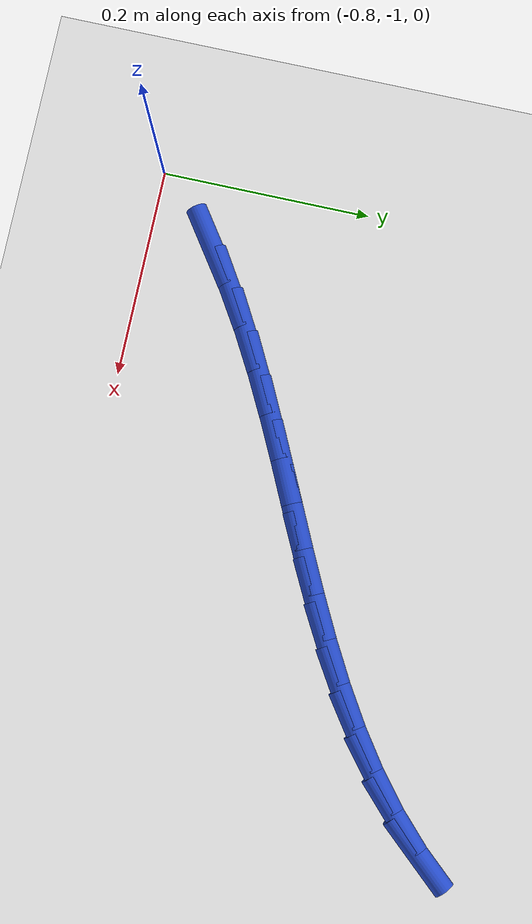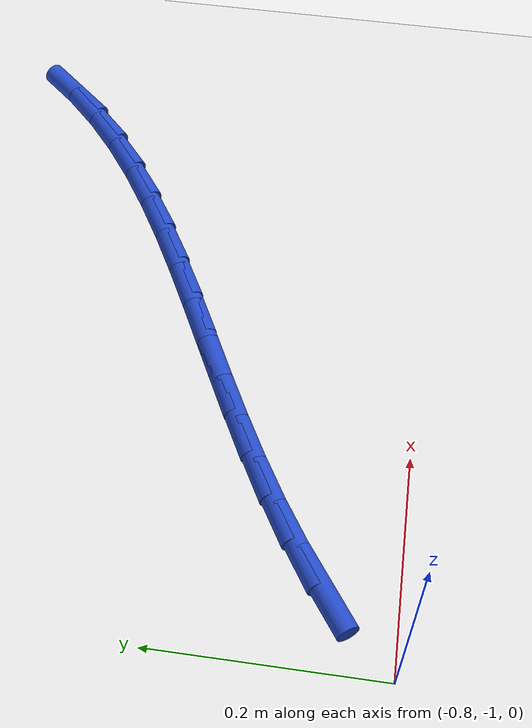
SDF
<sdf version="1.6">
 <world name="default">
  <model name="ground_plane">
   <static>1</static>
   <link name="link">
    <collision name="collision">
     <geometry><plane><normal>0 0 1</normal><size>100 100</size></plane></geometry>
     <surface><friction><ode><mu>100</mu><mu2>50</mu2></ode></friction></surface>
    </collision>
    <visual name="visual">
     <cast_shadows>0</cast_shadows>
     <geometry><plane><normal>0 0 1</normal><size>100 100</size></plane></geometry>
     <material>
      <script><uri>file://media/materials/scripts/gazebo.material</uri><name>Gazebo/WhiteGlow</name></script>
     </material>
    </visual>
   </link>
  </model>
  <model name="line">
   <link name="link_150">
    <pose>-0.7364365309532334 -0.9380713918923211 0.01 0 1.57 0.6070096937045855</pose>
    <collision name="collision">
     <geometry><cylinder><radius>0.01</radius><length>0.08</length></cylinder></geometry>
    </collision>
    <visual name="visual">
     <material>
      <script><name>Gazebo/Blue</name><uri>file://media/materials/scripts/gazebo.material</uri></script>
     </material>
     <geometry><cylinder><radius>0.01</radius><length>0.08</length></cylinder></geometry>
    </visual>
   </link>
   <link name="link_151">
    <pose>-0.7006793437939463 -0.9132388443043895 0.01 0 1.57 0.555771233072851</pose>
    <collision name="collision">
     <geometry><cylinder><radius>0.01</radius><length>0.08</length></cylinder></geometry>
    </collision>
    <visual name="visual">
     <material>
      <script><name>Gazebo/Blue</name><uri>file://media/materials/scripts/gazebo.material</uri></script>
     </material>
     <geometry><cylinder><radius>0.01</radius><length>0.08</length></cylinder></geometry>
    </visual>
   </link>
   <link name="link_152">
    <pose>-0.6637289242951993 -0.8902898947789947 0.01 0 1.57 0.5119866432917236</pose>
    <collision name="collision">
     <geometry><cylinder><radius>0.01</radius><length>0.08</length></cylinder></geometry>
    </collision>
    <visual name="visual">
     <material>
      <script><name>Gazebo/Blue</name><uri>file://media/materials/scripts/gazebo.material</uri></script>
     </material>
     <geometry><cylinder><radius>0.01</radius><length>0.08</length></cylinder></geometry>
    </visual>
   </link>
   <link name="link_153">
    <pose>-0.6257901350021904 -0.8689694390791282 0.01 0 1.57 0.47905952960198434</pose>
    <collision name="collision">
     <geometry><cylinder><radius>0.01</radius><length>0.08</length></cylinder></geometry>
    </collision>
    <visual name="visual">
     <material>
      <script><name>Gazebo/Blue</name><uri>file://media/materials/scripts/gazebo.material</uri></script>
     </material>
     <geometry><cylinder><radius>0.01</radius><length>0.08</length></cylinder></geometry>
    </visual>
   </link>
   <link name="link_154">
    <pose>-0.5871471588238147 -0.8488976567453983 0.01 0 1.57 0.45689615711120435</pose>
    <collision name="collision">
     <geometry><cylinder><radius>0.01</radius><length>0.08</length></cylinder></geometry>
    </collision>
    <visual name="visual">
     <material>
      <script><name>Gazebo/Blue</name><uri>file://media/materials/scripts/gazebo.material</uri></script>
     </material>
     <geometry><cylinder><radius>0.01</radius><length>0.08</length></cylinder></geometry>
    </visual>
   </link>
   <link name="link_155">
    <pose>-0.5480841786689703 -0.8296947273184158 0.01 0 1.57 0.44541278637421433</pose>
    <collision name="collision">
     <geometry><cylinder><radius>0.01</radius><length>0.08</length></cylinder></geometry>
    </collision>
    <visual name="visual">
     <material>
      <script><name>Gazebo/Blue</name><uri>file://media/materials/scripts/gazebo.material</uri></script>
     </material>
     <geometry><cylinder><radius>0.01</radius><length>0.08</length></cylinder></geometry>
    </visual>
   </link>
   <link name="link_156">
    <pose>-0.5088853774465525 -0.81098083033879 0.01 0 1.57 0.44461202357745355</pose>
    <collision name="collision">
     <geometry><cylinder><radius>0.01</radius><length>0.08</length></cylinder></geometry>
    </collision>
    <visual name="visual">
     <material>
      <script><name>Gazebo/Blue</name><uri>file://media/materials/scripts/gazebo.material</uri></script>
     </material>
     <geometry><cylinder><radius>0.01</radius><length>0.08</length></cylinder></geometry>
    </visual>
   </link>
   <link name="link_157">
    <pose>-0.4698349380654576 -0.7923761453471306 0.01 0 1.57 0.45462384047346055</pose>
    <collision name="collision">
     <geometry><cylinder><radius>0.01</radius><length>0.08</length></cylinder></geometry>
    </collision>
    <visual name="visual">
     <material>
      <script><name>Gazebo/Blue</name><uri>file://media/materials/scripts/gazebo.material</uri></script>
     </material>
     <geometry><cylinder><radius>0.01</radius><length>0.08</length></cylinder></geometry>
    </visual>
   </link>
   <link name="link_158">
    <pose>-0.43121704343458184 -0.7735008518840469 0.01 0 1.57 0.47571354255645226</pose>
    <collision name="collision">
     <geometry><cylinder><radius>0.01</radius><length>0.08</length></cylinder></geometry>
    </collision>
    <visual name="visual">
     <material>
      <script><name>Gazebo/Blue</name><uri>file://media/materials/scripts/gazebo.material</uri></script>
     </material>
     <geometry><cylinder><radius>0.01</radius><length>0.08</length></cylinder></geometry>
    </visual>
   </link>
   <link name="link_159">
    <pose>-0.39331587646282057 -0.7539751294901487 0.01 0 1.57 0.5082539065983506</pose>
    <collision name="collision">
     <geometry><cylinder><radius>0.01</radius><length>0.08</length></cylinder></geometry>
    </collision>
    <visual name="visual">
     <material>
      <script><name>Gazebo/Blue</name><uri>file://media/materials/scripts/gazebo.material</uri></script>
     </material>
     <geometry><cylinder><radius>0.01</radius><length>0.08</length></cylinder></geometry>
    </visual>
   </link>
   <link name="link_160">
    <pose>-0.35641562005907157 -0.7334191577060457 0.01 0 1.57 0.5526526531408663</pose>
    <collision name="collision">
     <geometry><cylinder><radius>0.01</radius><length>0.08</length></cylinder></geometry>
    </collision>
    <visual name="visual">
     <material>
      <script><name>Gazebo/Blue</name><uri>file://media/materials/scripts/gazebo.material</uri></script>
     </material>
     <geometry><cylinder><radius>0.01</radius><length>0.08</length></cylinder></geometry>
    </visual>
   </link>
   <link name="link_161">
    <pose>-0.3208004571322304 -0.7114531160723476 0.01 0 1.57 0.6092224908786128</pose>
    <collision name="collision">
     <geometry><cylinder><radius>0.01</radius><length>0.08</length></cylinder></geometry>
    </collision>
    <visual name="visual">
     <material>
      <script><name>Gazebo/Blue</name><uri>file://media/materials/scripts/gazebo.material</uri></script>
     </material>
     <geometry><cylinder><radius>0.01</radius><length>0.08</length></cylinder></geometry>
    </visual>
   </link>
   <link name="link_162">
    <pose>-0.286754570591193 -0.6876971841296639 0.01 0 1.57 0.6779846749011299</pose>
    <collision name="collision">
     <geometry><cylinder><radius>0.01</radius><length>0.08</length></cylinder></geometry>
    </collision>
    <visual name="visual">
     <material>
      <script><name>Gazebo/Blue</name><uri>file://media/materials/scripts/gazebo.material</uri></script>
     </material>
     <geometry><cylinder><radius>0.01</radius><length>0.08</length></cylinder></geometry>
    </visual>
   </link>
   <link name="link_163">
    <pose>-0.25456214334485594 -0.6617715414186041 0.01 0 1.57 0.7583120087083002</pose>
    <collision name="collision">
     <geometry><cylinder><radius>0.01</radius><length>0.08</length></cylinder></geometry>
    </collision>
    <visual name="visual">
     <material>
      <script><name>Gazebo/Blue</name><uri>file://media/materials/scripts/gazebo.material</uri></script>
     </material>
     <geometry><cylinder><radius>0.01</radius><length>0.08</length></cylinder></geometry>
    </visual>
   </link>
   <link name="link_164">
    <pose>-0.2245051975873362 -0.6333002873405438 0.01 0 1.57 0.8423472824055761</pose>
    <collision name="collision">
     <geometry><cylinder><radius>0.01</radius><length>0.08</length></cylinder></geometry>
    </collision>
    <visual name="visual">
     <material>
      <script><name>Gazebo/Blue</name><uri>file://media/materials/scripts/gazebo.material</uri></script>
     </material>
     <geometry><cylinder><radius>0.01</radius><length>0.08</length></cylinder></geometry>
    </visual>
   </link>
  </model>
 </world>
</sdf>
